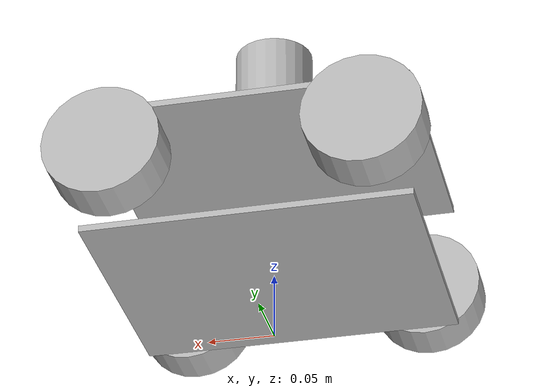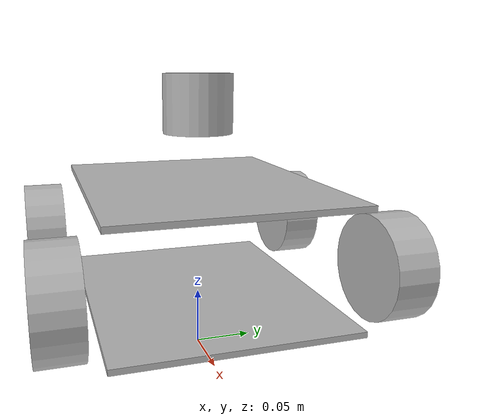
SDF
<?xml version="1.0" ?>
<sdf version="1.9">
  <model name="flexirover">

    <pose>0 0 0.05 0 0 0</pose>
    <static>false</static>

    <!-- Main body link -->
    <link name="base_link">

      <inertial>
        <mass>4.0</mass>
        <inertia>
          <ixx>0.03</ixx>
          <iyy>0.03</iyy>
          <izz>0.03</izz>
        </inertia>
      </inertial>

      <!-- Lower plate -->
      <visual name="lower_plate_visual">
        <pose>0 0 0 0 0 0</pose>
        <geometry>
          <box>
            <size>0.246 0.200 0.005</size>
          </box>
        </geometry>
      </visual>

      <collision name="lower_plate_collision">
        <pose>0 0 0 0 0 0</pose>
        <geometry>
          <box>
            <size>0.246 0.200 0.005</size>
          </box>
        </geometry>
      </collision>

      <!-- Upper plate -->
      <visual name="upper_plate_visual">
        <pose>0 0 0.10 0 0 0</pose>
        <geometry>
          <box>
            <size>0.246 0.200 0.005</size>
          </box>
        </geometry>
      </visual>

      <collision name="upper_plate_collision">
        <pose>0 0 0.10 0 0 0</pose>
        <geometry>
          <box>
            <size>0.246 0.200 0.005</size>
          </box>
        </geometry>
      </collision>

      <!-- LiDAR body -->
      <visual name="lidar_visual">
        <pose>0 0 0.17 0 0 0</pose>
        <geometry>
          <cylinder>
            <radius>0.03</radius>
            <length>0.05</length>
          </cylinder>
        </geometry>
      </visual>

      <collision name="lidar_collision">
        <pose>0 0 0.17 0 0 0</pose>
        <geometry>
          <cylinder>
            <radius>0.03</radius>
            <length>0.05</length>
          </cylinder>
        </geometry>
      </collision>

      <!-- Working Gazebo Sim LiDAR -->
      <sensor name="lidar" type="gpu_lidar">
        <pose>0 0 0.17 0 0 0</pose>
        <topic>/scan</topic>
        <update_rate>10</update_rate>
        <always_on>true</always_on>
        <visualize>true</visualize>

        <ray>
          <scan>
            <horizontal>
              <samples>720</samples>
              <resolution>1</resolution>
              <min_angle>-3.14159</min_angle>
              <max_angle>3.14159</max_angle>
            </horizontal>
          </scan>

          <range>
            <min>0.12</min>
            <max>10.0</max>
            <resolution>0.01</resolution>
          </range>

          <noise>
            <type>gaussian</type>
            <mean>0.0</mean>
            <stddev>0.01</stddev>
          </noise>
        </ray>
      </sensor>

    </link>

    <!-- Wheels as visuals/collisions for now -->

    <link name="front_left_wheel">
      <pose>0.095 0.13 0.044 1.5708 0 0</pose>
      <visual name="visual">
        <geometry>
          <cylinder>
            <radius>0.044</radius>
            <length>0.035</length>
          </cylinder>
        </geometry>
      </visual>
      <collision name="collision">
        <geometry>
          <cylinder>
            <radius>0.044</radius>
            <length>0.035</length>
          </cylinder>
        </geometry>
      </collision>
    </link>

    <link name="front_right_wheel">
      <pose>0.095 -0.13 0.044 1.5708 0 0</pose>
      <visual name="visual">
        <geometry>
          <cylinder>
            <radius>0.044</radius>
            <length>0.035</length>
          </cylinder>
        </geometry>
      </visual>
      <collision name="collision">
        <geometry>
          <cylinder>
            <radius>0.044</radius>
            <length>0.035</length>
          </cylinder>
        </geometry>
      </collision>
    </link>

    <link name="rear_left_wheel">
      <pose>-0.095 0.13 0.044 1.5708 0 0</pose>
      <visual name="visual">
        <geometry>
          <cylinder>
            <radius>0.044</radius>
            <length>0.035</length>
          </cylinder>
        </geometry>
      </visual>
      <collision name="collision">
        <geometry>
          <cylinder>
            <radius>0.044</radius>
            <length>0.035</length>
          </cylinder>
        </geometry>
      </collision>
    </link>

    <link name="rear_right_wheel">
      <pose>-0.095 -0.13 0.044 1.5708 0 0</pose>
      <visual name="visual">
        <geometry>
          <cylinder>
            <radius>0.044</radius>
            <length>0.035</length>
          </cylinder>
        </geometry>
      </visual>
      <collision name="collision">
        <geometry>
          <cylinder>
            <radius>0.044</radius>
            <length>0.035</length>
          </cylinder>
        </geometry>
      </collision>
    </link>

    <!-- Fixed joints to keep wheels attached for now -->

    <joint name="front_left_wheel_joint" type="fixed">
      <parent>base_link</parent>
      <child>front_left_wheel</child>
    </joint>

    <joint name="front_right_wheel_joint" type="fixed">
      <parent>base_link</parent>
      <child>front_right_wheel</child>
    </joint>

    <joint name="rear_left_wheel_joint" type="fixed">
      <parent>base_link</parent>
      <child>rear_left_wheel</child>
    </joint>

    <joint name="rear_right_wheel_joint" type="fixed">
      <parent>base_link</parent>
      <child>rear_right_wheel</child>
    </joint>

  </model>
</sdf>
